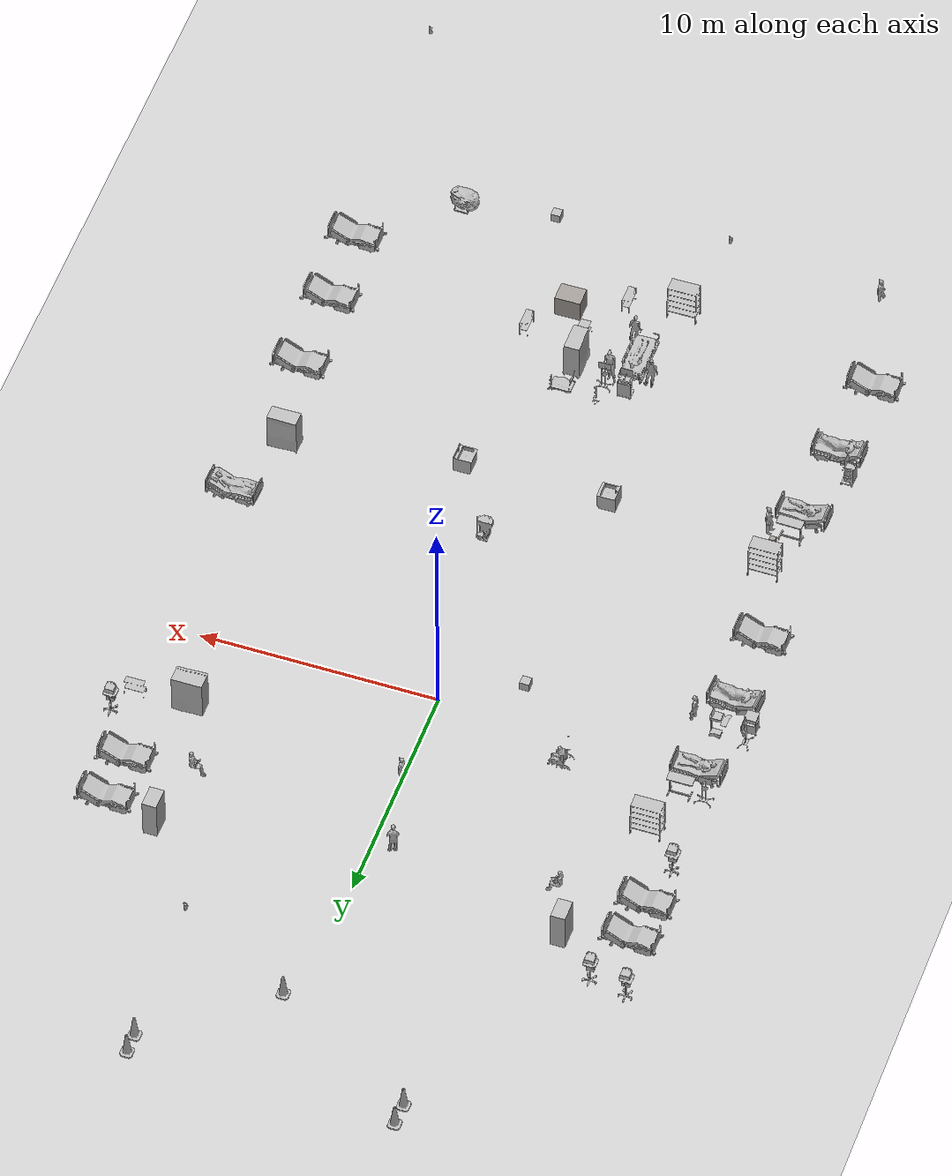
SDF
<sdf version="1.6">
 <world name="world">
  <gravity>0 0 -9.8</gravity>
  <physics default="0" name="default_physics" type="ode">
   <max_step_size>0.001</max_step_size>
   <real_time_factor>1</real_time_factor>
   <real_time_update_rate>1000</real_time_update_rate>
  </physics>
  <scene><ambient>0.6 0.6 0.6 1</ambient><background>0.4 0.4 0.4 1</background><shadows>false</shadows></scene>
  <include><uri>model://sun</uri></include>
  <include><uri>model://ground_plane</uri><pose>0 0 -0.1 0 -0 0</pose></include>
  <model name="CGMClassic_1">
   <include>
    <uri>model://CGMClassic</uri>
    <static>true</static>
    <pose>11.1777 -18.4129 0 0 0 -3.13719</pose>
   </include>
  </model>
  <model name="CGMClassic_2">
   <include>
    <uri>model://CGMClassic</uri>
    <static>true</static>
    <pose>11.1179 -14.6493 0 0 0 -3.13599</pose>
   </include>
  </model>
  <model name="Scrubs_1">
   <include><uri>model://Scrubs</uri><static>true</static><pose>-9.61916 -12.5112 0 0 0 -3.12353</pose></include>
  </model>
  <model name="cardboard_box_1">
   <pose>-3.10778 -1.65417 0.149501 0 -1e-06 0</pose>
   <scale>1 1 1</scale>
   <link name="link">
    <pose>-3.10778 -1.65417 0.149501 0 -1e-06 0</pose>
    <velocity>0 0 0 0 -0 0</velocity>
    <acceleration>-0 -0 -0 0 -0 0</acceleration>
    <wrench>-0 -0 -0 0 -0 0</wrench>
   </link>
  </model>
  <model name="Scrubs_2_box">
   <pose>0.054597 4.05849 0 0 -0 3.12413</pose>
   <link name="Scrubs_2_link">
    <collision name="collision"><geometry><box><size>0.3 0.3 1.0</size></box></geometry></collision>
    <visual name="visual">
     <pose>0 0 -0.5 0 0 0</pose>
     <geometry><mesh><uri>model://Scrubs/meshes/scrubs.obj</uri></mesh></geometry>
    </visual>
   </link>
   <plugin name="model_move" filename="libmodel_move.so">
    <goals>
     <pose>-2.0      2.0 0 0 0 0</pose>
     <pose>0.054597 4.05849 0 0 -0 3.12413</pose>
     <pose>2.0      2.0 0 0 0 0</pose>
     <pose>0.054597 4.05849 0 0 -0 3.12413</pose>
    </goals>
   </plugin>
  </model>
  <model name="PatientWheelChair_1_box">
   <pose>-5.46091 1.23577 0 0 0 0</pose>
   <link name="PatientWheelChair_1_link">
    <collision name="collision"><geometry><box><size>0.4 0.4 1.0</size></box></geometry></collision>
    <visual name="visual">
     <pose>0 0 -0.5 0 0 0</pose>
     <geometry><mesh><uri>model://PatientWheelChair/meshes/PatientWheelChair.obj</uri></mesh></geometry>
    </visual>
   </link>
   <plugin name="model_move" filename="libmodel_move.so">
    <goals>
     <pose>-5.46091 -9.5 0 0 0 0</pose>
     <pose>3.43310 -9.5 0 0 0 0</pose>
     <pose>-5.46091 -9.5 0 0 0 0</pose>
     <pose>-5.46091 1.23577 0 0 0 0</pose>
    </goals>
   </plugin>
  </model>
  <model name="Scrubs_3_box">
   <pose>-10.0 -26.0 0 0 0 3.14</pose>
   <link name="Scrubs_3_link">
    <collision name="collision"><geometry><box><size>0.3 0.3 1.0</size></box></geometry></collision>
    <visual name="visual">
     <pose>0 0 -0.5 0 0 0</pose>
     <geometry><mesh><uri>model://Scrubs/meshes/scrubs.obj</uri></mesh></geometry>
    </visual>
   </link>
   <plugin name="model_move" filename="libmodel_move.so">
    <goals>
     <pose>-7.5 -25 0 0 -0 0</pose>
     <pose>-5 -25 0 0 -0 0</pose>
     <pose>-5 -34 0 0 -0 0</pose>
     <pose>-7.5 -34 0 0 -0 0</pose>
     <pose>-7.5 -25 0 0 -0 0</pose>
     <pose>-10.0 -26.0 0 0 0 3.14</pose>
    </goals>
   </plugin>
  </model>
  <model name="SurgicalTrolley_1">
   <include>
    <uri>model://SurgicalTrolley</uri>
    <static>true</static>
    <pose>11.4301 3.56328 0 0 -0 0</pose>
   </include>
  </model>
  <model name="CGMClassic_3">
   <include>
    <uri>model://CGMClassic</uri>
    <static>true</static>
    <pose>-11.2304 -21.1134 0 0 0 -3.11834</pose>
   </include>
  </model>
  <model name="FemaleVisitorSit_1">
   <pose>-7.61435 7.50057 0 0 -0 1.60052</pose>
   <link name="FemaleVisitorSit::body">
    <visual name="visual">
     <geometry><mesh><uri>model://FemaleVisitorSit/meshes/FemaleVisitorSit.obj</uri></mesh></geometry>
    </visual>
    <collision name="collision">
     <geometry><mesh><uri>model://FemaleVisitorSit/meshes/FemaleVisitorSit_Col.obj</uri></mesh></geometry>
    </collision>
   </link>
   <plugin name="teleport_model_plugin" filename="libteleport_model.so">
    <teleport_interval>30.0</teleport_interval>
    <goals><pose>-7.61435 8.55057 0 0 -0 1.60052</pose><pose>-7.61435 7.50057 0 0 -0 1.60052</pose></goals>
   </plugin>
  </model>
  <model name="MopCart3_1">
   <include>
    <uri>model://MopCart3</uri>
    <static>true</static>
    <pose>1.07736 -8.59036 -6.7e-05 0 1e-06 0</pose>
   </include>
  </model>
  <model name="ElderLadyPatient_1">
   <include>
    <uri>model://ElderLadyPatient</uri>
    <static>true</static>
    <pose>-10.9972 0.231354 0.001654 0 -0 0</pose>
   </include>
  </model>
  <model name="ElderLadyPatient_2">
   <include>
    <uri>model://ElderLadyPatient</uri>
    <static>true</static>
    <pose>-10.8133 -13.5925 0.001657 0 -2e-06 -0.025052</pose>
   </include>
  </model>
  <model name="CGMClassic_4">
   <include>
    <uri>model://CGMClassic</uri>
    <static>true</static>
    <pose>-11.0878 -7.00992 0 0 -0 3.1351</pose>
   </include>
  </model>
  <model name="InstrumentCart1_1">
   <include>
    <uri>model://InstrumentCart1</uri>
    <static>true</static>
    <pose>-11.8071 -16.1825 0 0 -0 1.56702</pose>
   </include>
  </model>
  <model name="ElderMalePatient_1">
   <include>
    <uri>model://ElderMalePatient</uri>
    <static>true</static>
    <pose>-11.1165 -17.2377 0.001656 0 3e-06 0</pose>
   </include>
  </model>
  <model name="InstrumentCart2_1">
   <include>
    <uri>model://InstrumentCart2</uri>
    <static>true</static>
    <pose>-12.0906 -1.87329 0.051875 0 -0 1.57773</pose>
   </include>
  </model>
  <model name="InstrumentCart2_2">
   <include>
    <uri>model://InstrumentCart2</uri>
    <static>true</static>
    <pose>-11.5231 1.34237 0 0 -0 0</pose>
   </include>
  </model>
  <model name="CGMClassic_5">
   <include>
    <uri>model://CGMClassic</uri>
    <static>true</static>
    <pose>-11.0106 8.9505 -0.008203 -0.035019 -0.000392 3.13388</pose>
   </include>
  </model>
  <model name="CGMClassic_6">
   <include>
    <uri>model://CGMClassic</uri>
    <static>true</static>
    <pose>-11.025 7.10335 0 -0.035021 1.8e-05 -3.13762</pose>
   </include>
  </model>
  <model name="BedTable_1">
   <include>
    <uri>model://BedTable</uri>
    <static>true</static>
    <pose>-10.4759 1.39442 0.001184 0 -3e-06 0</pose>
   </include>
  </model>
  <model name="BedTable_2">
   <include>
    <uri>model://BedTable</uri>
    <static>true</static>
    <pose>-10.5874 -12.5084 0.001189 0 -0 3.11588</pose>
   </include>
  </model>
  <model name="BedsideTable_1">
   <include>
    <uri>model://BedsideTable</uri>
    <static>true</static>
    <pose>-12.1499 -2.63111 0.00018 1e-06 -0 -0.00878</pose>
   </include>
  </model>
  <model name="TrolleyBedPatient_1">
   <include>
    <uri>model://TrolleyBedPatient</uri>
    <static>true</static>
    <pose>-1.83202 -19.2612 0 0 -0 0</pose>
   </include>
  </model>
  <model name="Scrubs_4">
   <include><uri>model://Scrubs</uri><static>true</static><pose>-0.93616 -18.2252 0 0 -0 1.62572</pose></include>
  </model>
  <model name="Shower_1">
   <include><uri>model://Shower</uri><static>true</static><pose>-1.07422 -16.1332 0 0 -0 0</pose></include>
  </model>
  <model name="Shower_2">
   <include><uri>model://Shower</uri><static>true</static><pose>0.853327 -16.1492 0 0 -0 0</pose></include>
  </model>
  <model name="SurgicalTrolley_2">
   <include>
    <uri>model://SurgicalTrolley</uri>
    <static>true</static>
    <pose>-0.411421 -22.2085 0 0 0 -1.58175</pose>
   </include>
  </model>
  <model name="SurgicalTrolley_3">
   <include>
    <uri>model://SurgicalTrolley</uri>
    <static>true</static>
    <pose>3.11747 -19.6565 0 0 -0 1.57031</pose>
   </include>
  </model>
  <model name="SurgicalTrolleyMed_1">
   <include>
    <uri>model://SurgicalTrolleyMed</uri>
    <static>true</static>
    <pose>0.770804 -19.7749 0 0 0 -1.56798</pose>
   </include>
  </model>
  <model name="Scrubs_5">
   <include>
    <uri>model://Scrubs</uri>
    <static>true</static>
    <pose>-2.66657 -18.3733 0 -0.002221 -0.006608 -1.24025</pose>
   </include>
  </model>
  <model name="InstrumentCart1_2">
   <include>
    <uri>model://InstrumentCart1</uri>
    <static>true</static>
    <pose>-11.8071 -16.1825 0 0 -0 1.56702</pose>
   </include>
  </model>
  <model name="InstrumentCart2_3">
   <include>
    <uri>model://InstrumentCart2</uri>
    <static>true</static>
    <pose>-0.869537 -17.7436 0 0 0 -0.002595</pose>
   </include>
  </model>
  <model name="StorageRackCovered_1">
   <include>
    <uri>model://StorageRackCovered</uri>
    <static>true</static>
    <pose>0.546476 -18.3985 -0 0 -0 1.56584</pose>
   </include>
  </model>
  <model name="StorageRack_2">
   <include>
    <uri>model://StorageRack</uri>
    <static>true</static>
    <pose>-2.69866 -22.4178 -8e-06 0 4e-06 0</pose>
   </include>
  </model>
  <model name="KitchenSink_1">
   <include>
    <uri>model://KitchenSink</uri>
    <static>true</static>
    <pose>3.06236 -11.8809 -0.001614 0 -0 3.1391</pose>
   </include>
  </model>
  <model name="KitchenSink_2">
   <include>
    <uri>model://KitchenSink</uri>
    <static>true</static>
    <pose>-3.09305 -11.8988 -0.001609 0 -0 0</pose>
   </include>
  </model>
  <model name="CGMClassic_7">
   <include>
    <uri>model://CGMClassic</uri>
    <static>true</static>
    <pose>10.6166 9.06291 -0.008203 -0.03501 0.000885 -3.11285</pose>
   </include>
  </model>
  <model name="CGMClassic_8">
   <include>
    <uri>model://CGMClassic</uri>
    <static>true</static>
    <pose>10.6006 6.90956 -0.008203 -0.035003 0.001133 -3.10576</pose>
   </include>
  </model>
  <model name="ParkingTrolleyMin_1">
   <include>
    <uri>model://ParkingTrolleyMin</uri>
    <static>true</static>
    <pose>0.715846 -17.1496 -0.000121 -1e-06 -0 0</pose>
   </include>
  </model>
  <model name="MaleVisitorOnPhone_1_box">
   <pose>-0.760316 7.58474 0 0 0 -1.14974</pose>
   <link name="MaleVisitorOnPhone_1_link">
    <collision name="collision"><geometry><box><size>0.5 0.5 1.0</size></box></geometry></collision>
    <visual name="visual">
     <pose>0 0 -0.5 0 0 0</pose>
     <geometry><mesh><uri>model://MaleVisitorOnPhone/meshes/MaleVisitorStatic.obj</uri></mesh></geometry>
    </visual>
   </link>
   <plugin name="model_move" filename="libmodel_move.so">
    <goals><pose>-4.00000  7.58474 0 0 0 -1.14974</pose><pose>-0.760316 7.58474 0 0 0 -1.14974</pose></goals>
   </plugin>
  </model>
  <model name="Scrubs_6">
   <include><uri>model://Scrubs</uri><static>true</static><pose>-1.29468 -20.4093 0 0 0 -1.51066</pose></include>
  </model>
  <model name="MalePatientBed_1">
   <include>
    <uri>model://MalePatientBed</uri>
    <static>true</static>
    <pose>11.3771 -7.38891 0.001658 -1e-06 1e-06 3.11598</pose>
   </include>
  </model>
  <model name="CGMClassic_9">
   <include>
    <uri>model://CGMClassic</uri>
    <static>true</static>
    <pose>11.3613 -21.8867 0 0 0 -3.12292</pose>
   </include>
  </model>
  <model name="StorageRackCoverOpen_1">
   <include>
    <uri>model://StorageRackCoverOpen</uri>
    <static>true</static>
    <pose>9.15016 3.44263 -9e-06 1e-06 2e-06 0</pose>
   </include>
  </model>
  <model name="StorageRack_3">
   <include><uri>model://StorageRack</uri><static>true</static><pose>-10.1178 -10.4694 -0 0 -0 0</pose></include>
  </model>
  <model name="StorageRack_4">
   <include>
    <uri>model://StorageRack</uri>
    <static>true</static>
    <pose>-9.91557 3.5644 -9e-06 1e-06 1e-06 -0.000273</pose>
   </include>
  </model>
  <model name="StorageRackCovered_2">
   <include>
    <uri>model://StorageRackCovered</uri>
    <static>true</static>
    <pose>10.294 -10.577 -7e-06 3e-06 -0 3.13389</pose>
   </include>
  </model>
  <model name="FemaleVisitorSit_2">
   <include>
    <uri>model://FemaleVisitorSit</uri>
    <static>true</static>
    <pose>7.85005 6.59766 0 0 0 -1.5621</pose>
   </include>
  </model>
  <model name="InstrumentCart1_3">
   <include>
    <uri>model://InstrumentCart1</uri>
    <static>true</static>
    <pose>-1.83539 -17.5879 0 0 -0 0</pose>
   </include>
  </model>
  <model name="ParkingTrolleyMax_1">
   <include>
    <uri>model://ParkingTrolleyMax</uri>
    <static>true</static>
    <pose>7.71054 -25.1326 -0.000121 1e-06 -0 -1.59536</pose>
   </include>
  </model>
  <model name="ElderMalePatient_2">
   <include>
    <uri>model://ElderMalePatient</uri>
    <static>true</static>
    <pose>-11.2471 -3.5813 0.001656 0 -0 -0.054192</pose>
   </include>
  </model>
  <model name="XRayMachine_1">
   <include><uri>model://XRayMachine</uri><static>true</static><pose>1.79424 -21.3329 0 0 -0 0</pose></include>
  </model>
  <model name="BloodPressureMonitor_1">
   <include>
    <uri>model://BloodPressureMonitor</uri>
    <static>true</static>
    <pose>-9.96258 -11.9361 0 0 -0 0</pose>
   </include>
  </model>
  <model name="BMWCart_1">
   <include><uri>model://BMWCart</uri><static>true</static><pose>-10.931 -1.9483 0 0 -0 0</pose></include>
  </model>
  <model name="Scrubs_7_box">
   <pose>-9.75875 -2.67552 0 0 -0 0</pose>
   <link name="Scrubs_7_link">
    <collision name="collision"><geometry><box><size>0.5 0.5 1.0</size></box></geometry></collision>
    <visual name="visual">
     <pose>0 0 -0.5 0 0 0</pose>
     <geometry><mesh><uri>model://Scrubs/meshes/scrubs.obj</uri></mesh></geometry>
    </visual>
   </link>
   <plugin name="model_move" filename="libmodel_move.so">
    <goals>
     <pose>-7.05875 -2.67552 0 0 -0 0</pose>
     <pose>-7.05875 -7.67552 0 0 -0 0</pose>
     <pose>-7.05875 -2.67552 0 0 -0 0</pose>
     <pose>-9.75875 -2.67552 0 0 -0 0</pose>
    </goals>
   </plugin>
  </model>
  <model name="BPCart_1">
   <include>
    <uri>model://BPCart</uri>
    <static>true</static>
    <pose>-10.1788 11.173 0.003446 1e-06 -0 0.003096</pose>
   </include>
  </model>
  <model name="BPCart_2">
   <include><uri>model://BPCart</uri><static>true</static><pose>12.0072 4.64765 0 0 -0 0</pose></include>
  </model>
  <model name="BPCart_3">
   <include><uri>model://BPCart</uri><static>true</static><pose>-11.7236 11.4294 0 0 -0 0</pose></include>
  </model>
  <model name="BPCart_4">
   <include>
    <uri>model://BPCart</uri>
    <static>true</static>
    <pose>-11.4703 5.05999 0.003446 1e-06 -0 0.003096</pose>
   </include>
  </model>
  <model name="VendingMachine_1">
   <include>
    <uri>model://VendingMachine</uri>
    <static>true</static>
    <pose>-8.45694 9.63064 0 0 -0 0</pose>
   </include>
  </model>
  <model name="VendingMachine_2">
   <include>
    <uri>model://VendingMachine</uri>
    <static>true</static>
    <pose>8.35378 9.64852 -3e-06 -6e-06 0 0</pose>
   </include>
  </model>
  <model name="cardboard_box">
   <pose>-3.07797 -1.68409 0.148999 0 -0 0</pose>
   <scale>1 1 1</scale>
   <link name="cardboard_box::link">
    <collision name="collision">
     <geometry><mesh><uri>model://cardboard_box/meshes/cardboard_box.dae</uri></mesh></geometry>
    </collision>
    <visual name="visual">
     <geometry><mesh><uri>model://cardboard_box/meshes/cardboard_box.dae</uri></mesh></geometry>
    </visual>
   </link>
   <plugin name="teleport_model_plugin" filename="libteleport_model.so">
    <teleport_interval>45.0</teleport_interval>
    <goals><pose>-1.10797 -1.68409 0.148999 0 -0 0</pose><pose>-3.07797 -1.68409 0.148999 0 -0 0</pose></goals>
   </plugin>
  </model>
  <model name="cardboard_box_2">
   <pose>3.86797 -25.63 0.149501 0 -0 0</pose>
   <scale>1 1 1</scale>
   <link name="link">
    <collision name="collision">
     <geometry><mesh><uri>model://cardboard_box/meshes/cardboard_box.dae</uri></mesh></geometry>
    </collision>
    <visual name="visual">
     <geometry><mesh><uri>model://cardboard_box/meshes/cardboard_box.dae</uri></mesh></geometry>
    </visual>
   </link>
   <plugin name="teleport_model_plugin" filename="libteleport_model.so">
    <teleport_interval>50.0</teleport_interval>
    <goals><pose>1.86797 -25.63 0.149501 0 -0 0</pose><pose>3.86797 -25.63 0.149501 0 -0 0</pose></goals>
   </plugin>
  </model>
  <model name="Fire Extinguisher_0">
   <link name="link">
    <collision name="collision">
     <geometry><mesh><uri>model://fire_extinguisher/meshes/extinguisher.dae</uri></mesh></geometry>
    </collision>
    <visual name="visual">
     <geometry><mesh><uri>model://fire_extinguisher/meshes/extinguisher.dae</uri></mesh></geometry>
    </visual>
   </link>
   <pose>5.80011 13.09 0 0 -0 0</pose>
   <plugin name="teleport_model_plugin" filename="libteleport_model.so">
    <teleport_interval>40.0</teleport_interval>
    <goals><pose>3.61 14.7934 0 0 -0 0</pose><pose>5.80011 13.09 0 0 -0 0</pose></goals>
   </plugin>
  </model>
  <model name="Fire Extinguisher_1">
   <link name="link">
    <collision name="collision">
     <geometry><mesh><uri>model://fire_extinguisher/meshes/extinguisher.dae</uri></mesh></geometry>
    </collision>
    <visual name="visual">
     <geometry><mesh><uri>model://fire_extinguisher/meshes/extinguisher.dae</uri></mesh></geometry>
    </visual>
   </link>
   <pose>12.33 -33.88 0.0 0 -0 0</pose>
   <plugin name="teleport_model_plugin" filename="libteleport_model.so">
    <teleport_interval>30.0</teleport_interval>
    <goals><pose>9.95 -32.19 0 0 -0 0</pose><pose>12.33 -33.88 0.0 0 -0 0</pose></goals>
   </plugin>
  </model>
  <model name="Fire Extinguisher_2">
   <link name="link">
    <collision name="collision">
     <geometry><mesh><uri>model://fire_extinguisher/meshes/extinguisher.dae</uri></mesh></geometry>
    </collision>
    <visual name="visual">
     <geometry><mesh><uri>model://fire_extinguisher/meshes/extinguisher.dae</uri></mesh></geometry>
    </visual>
   </link>
   <pose>-3.21 -26.82 0.0 0 -0 0</pose>
   <plugin name="teleport_model_plugin" filename="libteleport_model.so">
    <teleport_interval>35.0</teleport_interval>
    <goals><pose>-1.58 -26.21 0 0 -0 0</pose><pose>-3.21 -26.82 0.0 0 -0 0</pose></goals>
   </plugin>
  </model>
  <model name="Construction Cone">
   <link name="link">
    <collision name="collision">
     <geometry>
      <mesh><scale>10 10 10</scale><uri>model://construction_cone/meshes/construction_cone.dae</uri></mesh>
     </geometry>
    </collision>
    <visual name="visual">
     <geometry>
      <mesh><scale>10 10 10</scale><uri>model://construction_cone/meshes/construction_cone.dae</uri></mesh>
     </geometry>
    </visual>
    <inertial>
     <inertia><ixx>1</ixx><ixy>0</ixy><ixz>0</ixz><iyy>1</iyy><iyz>0</iyz><izz>1</izz></inertia>
     <mass>1</mass>
    </inertial>
   </link>
   <pose>-5.41601 19.2994 0 0 -0 0</pose>
  </model>
  <model name="Construction Cone_0">
   <link name="link">
    <collision name="collision">
     <geometry>
      <mesh><scale>10 10 10</scale><uri>model://construction_cone/meshes/construction_cone.dae</uri></mesh>
     </geometry>
    </collision>
    <visual name="visual">
     <geometry>
      <mesh><scale>10 10 10</scale><uri>model://construction_cone/meshes/construction_cone.dae</uri></mesh>
     </geometry>
    </visual>
    <inertial>
     <inertia><ixx>1</ixx><ixy>0</ixy><ixz>0</ixz><iyy>1</iyy><iyz>0</iyz><izz>1</izz></inertia>
     <mass>1</mass>
    </inertial>
   </link>
   <pose>-5.39163 20.2409 0 0 -0 0</pose>
  </model>
  <model name="Construction Cone_1">
   <link name="link">
    <collision name="collision">
     <geometry>
      <mesh><scale>10 10 10</scale><uri>model://construction_cone/meshes/construction_cone.dae</uri></mesh>
     </geometry>
    </collision>
    <visual name="visual">
     <geometry>
      <mesh><scale>10 10 10</scale><uri>model://construction_cone/meshes/construction_cone.dae</uri></mesh>
     </geometry>
    </visual>
    <inertial>
     <inertia><ixx>1</ixx><ixy>0</ixy><ixz>0</ixz><iyy>1</iyy><iyz>0</iyz><izz>1</izz></inertia>
     <mass>1</mass>
    </inertial>
   </link>
   <pose>5.45197 20.3753 0 0 -0 0</pose>
  </model>
  <model name="Construction Cone_2">
   <link name="link">
    <collision name="collision">
     <geometry>
      <mesh><scale>10 10 10</scale><uri>model://construction_cone/meshes/construction_cone.dae</uri></mesh>
     </geometry>
    </collision>
    <visual name="visual">
     <geometry>
      <mesh><scale>10 10 10</scale><uri>model://construction_cone/meshes/construction_cone.dae</uri></mesh>
     </geometry>
    </visual>
    <inertial>
     <inertia><ixx>1</ixx><ixy>0</ixy><ixz>0</ixz><iyy>1</iyy><iyz>0</iyz><izz>1</izz></inertia>
     <mass>1</mass>
    </inertial>
   </link>
   <pose>5.46674 19.5149 0 0 -0 0</pose>
  </model>
  <model name="Construction Cone_3">
   <link name="link">
    <collision name="collision">
     <geometry>
      <mesh><scale>10 10 10</scale><uri>model://construction_cone/meshes/construction_cone.dae</uri></mesh>
     </geometry>
    </collision>
    <visual name="visual">
     <geometry>
      <mesh><scale>10 10 10</scale><uri>model://construction_cone/meshes/construction_cone.dae</uri></mesh>
     </geometry>
    </visual>
    <inertial>
     <inertia><ixx>1</ixx><ixy>0</ixy><ixz>0</ixz><iyy>1</iyy><iyz>0</iyz><izz>1</izz></inertia>
     <mass>1</mass>
    </inertial>
   </link>
   <pose>0.759627 15.7634 0 0 -0 0</pose>
   <plugin name="teleport_model_plugin" filename="libteleport_model.so">
    <teleport_interval>100.0</teleport_interval>
    <goals>
     <pose>-1.95 14.4634 0 0 -0 0</pose>
     <pose>4.0 14.0634 0 0 -0 0</pose>
     <pose>0.759627 15.7634 0 0 -0 0</pose>
    </goals>
   </plugin>
  </model>
 </world>
</sdf>

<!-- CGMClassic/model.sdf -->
<sdf version="1.6">
  <model name="CGMClassic">
   <static>true</static>
    <link name="body">
      <pose>0 0 0 0 0 0</pose>

      <visual name="visual">
        <geometry>
          <mesh>
            <uri>model://CGMClassic/meshes/CGMClassic.obj</uri>
            <scale>0.01 0.01 0.01</scale>
          </mesh>
        </geometry>
      </visual>

      <collision name="collision">
        <geometry>
          <mesh>
            <uri>model://CGMClassic/meshes/CGMClassic.obj</uri>
            <scale>0.01 0.01 0.01</scale>
          </mesh>
        </geometry>
      </collision>

    </link>
  </model>
</sdf>

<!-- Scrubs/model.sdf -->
<sdf version="1.6">
  <model name='Scrubs'>
   <static>true</static>
    <link name="body">
      <pose>0 0 0 0 0 0</pose>

      <visual name="visual">
        <geometry>
          <mesh>
            <uri>model://Scrubs/meshes/scrubs.obj</uri>
          </mesh>
        </geometry>
      </visual>

      <collision name="collision">
        <geometry>
          <mesh>
            <uri>model://Scrubs/meshes/Scrubs_Col.obj</uri>
          </mesh>
        </geometry>
      </collision>

    </link>
  </model>
</sdf>

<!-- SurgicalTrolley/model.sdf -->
<sdf version="1.6">
  <model name='SurgicalTrolley'>
   <static>true</static>
    <link name="body">
      <pose>0 0 0 0 0 0</pose>

      <visual name="visual">
        <geometry>
          <mesh>
            <uri>model://SurgicalTrolley/meshes/trolley.obj</uri>
          </mesh>
        </geometry>
      </visual>

      <collision name="collision">
        <geometry>
          <mesh>
            <uri>model://SurgicalTrolley/meshes/trolley.obj</uri>
          </mesh>
        </geometry>
      </collision>

    </link>
  </model>
</sdf>

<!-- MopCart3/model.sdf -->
<sdf version="1.5">
  <model name="MopCart3">
    <link name="link">
      <pose>0 0 0 0 0 0</pose>

        <visual name="visual">
          <geometry>
            <mesh><uri>model://MopCart3/meshes/MopCart3.obj</uri></mesh>
          </geometry>
        </visual>

        <collision name="collision">
          <geometry>
            <mesh><uri>model://MopCart3/meshes/MopCart3.obj</uri></mesh>
          </geometry>
        </collision>

    </link>
  </model>
</sdf>

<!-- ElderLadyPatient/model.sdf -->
<sdf version="1.6">
  <model name='ElderLadyPatient'>
    <link name="body">
      <pose>0 0 0 0 0 0</pose>

      <visual name="visual">
        <geometry>
          <mesh>
            <uri>model://ElderLadyPatient/meshes/ElderFemale.obj</uri>
          </mesh>
        </geometry>
      </visual>

      <collision name="collision">
        <geometry>
          <mesh>
            <uri>model://ElderLadyPatient/meshes/ElderFemale.obj</uri>
          </mesh>
        </geometry>
      </collision>

    </link>
  </model>
</sdf>

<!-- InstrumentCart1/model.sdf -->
<sdf version="1.6">
  <model name="InstrumentCart1">
   <static>true</static>
    <link name="body">
      <pose>0 0 0 0 0 0</pose>

      <visual name="visual">
        <geometry>
          <mesh>
            <uri>model://InstrumentCart1/meshes/InstrumentCart1.obj</uri>
          </mesh>
        </geometry>
      </visual>

      <collision name="collision">
        <geometry>
          <mesh>
            <uri>model://InstrumentCart1/meshes/InstrumentCart1.obj</uri>
          </mesh>
        </geometry>
      </collision>

    </link>
  </model>
</sdf>

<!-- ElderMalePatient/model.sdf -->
<sdf version="1.5">
  <model name="ElderMalePatient">
    <link name="link">
      <pose>0 0 0 0 0 0</pose>

        <visual name="visual">
          <geometry>
            <mesh><uri>model://ElderMalePatient/meshes/ElderMalePatient.obj</uri></mesh>
          </geometry>
        </visual>

        <collision name="collision">
          <geometry>
            <mesh><uri>model://ElderMalePatient/meshes/ElderMalePatient.obj</uri></mesh>
          </geometry>
        </collision>

    </link>
  </model>
</sdf>

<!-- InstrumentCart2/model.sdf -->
<sdf version="1.6">
  <model name="InstrumentCart2">
   <static>true</static>
    <link name="body">
      <pose>0 0 0 0 0 0</pose>

      <visual name="visual">
        <geometry>
          <mesh>
            <uri>model://InstrumentCart2/meshes/InstrumentCart2.obj</uri>
          </mesh>
        </geometry>
      </visual>

      <collision name="collision">
        <geometry>
          <mesh>
            <uri>model://InstrumentCart2/meshes/InstrumentCart2.obj</uri>
          </mesh>
        </geometry>
      </collision>

    </link>
  </model>
</sdf>

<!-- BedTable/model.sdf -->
<sdf version="1.6">
  <model name='BedTable'>
    <link name="body">
      <pose>0 0 0 0 0 0</pose>

      <visual name="visual">
        <geometry>
          <mesh>
            <uri>model://BedTable/meshes/BedTable.obj</uri>
          </mesh>
        </geometry>
      </visual>

      <collision name="collision">
        <geometry>
          <mesh>
            <uri>model://BedTable/meshes/BedTable_Col.obj</uri>
          </mesh>
        </geometry>
      </collision>

    </link>
  </model>
</sdf>

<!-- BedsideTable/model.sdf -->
<sdf version="1.6">
  <model name='BedsideTable'>
    <link name="body">
      <pose>0 0 0 0 0 -1.5708</pose>

      <visual name="visual">
        <geometry>
          <mesh>
            <uri>model://BedsideTable/meshes/BedsideTable.obj</uri>
          </mesh>
        </geometry>
      </visual>

      <collision name="collision">
        <geometry>
          <mesh>
            <uri>model://BedsideTable/meshes/BedsideTable_Col.obj</uri>
          </mesh>
        </geometry>
      </collision>

    </link>
  </model>
</sdf>

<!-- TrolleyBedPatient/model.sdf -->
<sdf version="1.6">
  <model name="TrolleyBedPatient">
   <static>true</static>
    <link name="body">
      <pose>0 0 0 0 0 0</pose>

      <visual name="visual">
        <geometry>
          <mesh>
            <uri>model://TrolleyBedPatient/meshes/TrolleyBedPatient.obj</uri>
          </mesh>
        </geometry>
      </visual>

      <collision name="collision">
        <geometry>
          <mesh>
            <uri>model://TrolleyBedPatient/meshes/TrolleyBedPatient.obj</uri>
          </mesh>
        </geometry>
      </collision>

    </link>
  </model>
</sdf>

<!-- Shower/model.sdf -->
<sdf version="1.6">
  <model name='Shower'>
<static>true</static>
    <link name="body">
      <pose>0 0 0 0 0 0</pose>

      <visual name="visual">
        <geometry>
          <mesh>
            <uri>model://Shower/meshes/Shower.obj</uri>
            <scale>1 1 1</scale>
          </mesh>
        </geometry>
      </visual>

      <collision name="collision">
        <geometry>
          <mesh>
            <uri>model://Shower/meshes/Shower.obj</uri>
            <scale>1 1 1</scale>
          </mesh>
        </geometry>
      </collision>

    </link>
  </model>
</sdf>

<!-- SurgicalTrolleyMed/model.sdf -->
<sdf version="1.6">
  <model name="SurgicalTrolleyMed">
   <static>true</static>
    <link name="body">
      <pose>0 0 0 0 0 0</pose>

      <visual name="visual">
        <geometry>
          <mesh>
            <uri>model://SurgicalTrolleyMed/meshes/SurgicalTrolleyMed.obj</uri>
          </mesh>
        </geometry>
      </visual>

      <collision name="collision">
        <geometry>
          <mesh>
            <uri>model://SurgicalTrolleyMed/meshes/SurgicalTrolleyMed_Col.obj</uri>
          </mesh>
        </geometry>
      </collision>

    </link>
  </model>
</sdf>

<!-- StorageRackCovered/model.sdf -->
<sdf version="1.5">
  <model name="StorageRackCovered">
    <link name="link">
      <pose>0 0 0 0 0 0</pose>

        <visual name="visual">
          <geometry>
            <mesh><uri>model://StorageRackCovered/meshes/StorageRackCovered.obj</uri></mesh>
          </geometry>
        </visual>

        <collision name="collision">
          <geometry>
            <mesh><uri>model://StorageRackCovered/meshes/StorageRackCovered.obj</uri></mesh>
          </geometry>
        </collision>

    </link>
  </model>
</sdf>

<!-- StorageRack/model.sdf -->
<sdf version="1.5">
  <model name="StorageRack">
    <link name="link">
      <pose>0 0 0 0 0 0</pose>

        <visual name="visual">
          <geometry>
            <mesh><uri>model://StorageRack/meshes/StorageRack.obj</uri></mesh>
          </geometry>
        </visual>

        <collision name="collision">
          <geometry>
            <mesh><uri>model://StorageRack/meshes/StorageRack.obj</uri></mesh>
          </geometry>
        </collision>

    </link>
  </model>
</sdf>

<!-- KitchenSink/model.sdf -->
<sdf version="1.5">
  <model name="KitchenSink">
    <link name="link">
      <pose>0 0 0 0 0 0</pose>

        <visual name="visual">
          <geometry>
            <mesh><uri>model://KitchenSink/meshes/kitchenSink.obj</uri></mesh>
          </geometry>
        </visual>

        <collision name="collision">
          <geometry>
            <mesh><uri>model://KitchenSink/meshes/kitchenSink.obj</uri></mesh>
          </geometry>
        </collision>

    </link>
  </model>
</sdf>

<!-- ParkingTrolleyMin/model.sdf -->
<sdf version="1.6">
  <model name='ParkingTrolleyMin'>
    <link name="body">
      <pose>0 0 0 0 0 0</pose>

        <visual name="visual">
          <pose>0 0 0 0 0 0</pose>
          <geometry>
            <mesh><uri>model://ParkingTrolleyMin/meshes/trolleymin.obj</uri></mesh>
          </geometry>
        </visual>

        <collision name="collision">
          <pose>0 0 0 0 0 0</pose>
          <geometry>
            <mesh><uri>model://ParkingTrolleyMin/meshes/trolleymin.obj</uri></mesh>
          </geometry>
        </collision>

    </link>
  </model>
</sdf>

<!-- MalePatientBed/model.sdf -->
<sdf version="1.5">
  <model name="MalePatientBed">
    <link name="link">
      <pose>0 0 0 0 0 0</pose>

        <visual name="visual">
          <geometry>
            <mesh><uri>model://MalePatientBed/meshes/MalePatientBed.obj</uri></mesh>
          </geometry>
        </visual>

        <collision name="collision">
          <geometry>
            <mesh><uri>model://MalePatientBed/meshes/MalePatientBed.obj</uri></mesh>
          </geometry>
        </collision>

    </link>
  </model>
</sdf>

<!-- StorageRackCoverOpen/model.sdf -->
<sdf version="1.5">
  <model name="StorageRackCoverOpen">
    <link name="link">
      <pose>0 0 0 0 0 0</pose>

        <visual name="visual">
          <geometry>
            <mesh><uri>model://StorageRackCoverOpen/meshes/StorageRackCoverOpen.obj</uri></mesh>
          </geometry>
        </visual>

        <collision name="collision">
          <geometry>
            <mesh><uri>model://StorageRackCoverOpen/meshes/StorageRackCoverOpen.obj</uri></mesh>
          </geometry>
        </collision>

    </link>
  </model>
</sdf>

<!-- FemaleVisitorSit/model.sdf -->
<sdf version="1.6">
  <model name="FemaleVisitorSit">
   <static>true</static>
    <link name="body">
      <pose>0 0 0 0 0 0</pose>

      <visual name="visual">
        <geometry>
          <mesh>
            <uri>model://FemaleVisitorSit/meshes/FemaleVisitorSit.obj</uri>
          </mesh>
        </geometry>
      </visual>

      <collision name="collision">
        <geometry>
          <mesh>
            <uri>model://FemaleVisitorSit/meshes/FemaleVisitorSit_Col.obj</uri>
          </mesh>
        </geometry>
      </collision>

    </link>
  </model>
</sdf>

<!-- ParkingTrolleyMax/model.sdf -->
<sdf version="1.6">
  <model name='ParkingTrolleyMax'>
    <link name="body">
      <pose>0 0 0 0 0 0</pose>

        <visual name="visual">
          <pose>0 0 0 0 0 0</pose>
          <geometry>
            <mesh><uri>model://ParkingTrolleyMax/meshes/ParkingTrolleyMax.obj</uri></mesh>
          </geometry>
        </visual>

        <collision name="collision">
          <pose>0 0 0 0 0 0</pose>
          <geometry>
            <mesh><uri>model://ParkingTrolleyMax/meshes/ParkingTrolleyMax.obj</uri></mesh>
          </geometry>
        </collision>

    </link>
  </model>
</sdf>

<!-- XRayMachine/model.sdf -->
<sdf version="1.6">
  <model name="XRayMachine">
    <static>true</static>
    <link name="link">
      <collision name="col">
        <geometry>
          <box>
            <size>1.1 0.85 1.65</size>
          </box>
        </geometry>
      </collision>
      <visual name="vis">
        <geometry>
          <box>
            <size>1.1 0.85 1.65</size>
          </box>
        </geometry>
        <material>
          <ambient>0.62 0.6 0.58 1</ambient>
          <diffuse>0.62 0.6 0.58 1</diffuse>
        </material>
      </visual>
    </link>
  </model>
</sdf>

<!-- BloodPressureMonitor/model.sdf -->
<sdf version="1.6">
  <model name="BloodPressureMonitor">
    <static>true</static>
    <link name="link">
      <collision name="col">
        <geometry>
          <box>
            <size>0.25 0.22 0.95</size>
          </box>
        </geometry>
      </collision>
      <visual name="vis">
        <geometry>
          <box>
            <size>0.25 0.22 0.95</size>
          </box>
        </geometry>
        <material>
          <ambient>0.62 0.6 0.58 1</ambient>
          <diffuse>0.62 0.6 0.58 1</diffuse>
        </material>
      </visual>
    </link>
  </model>
</sdf>

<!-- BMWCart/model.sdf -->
<sdf version="1.6">
  <model name='BMWCart'>
    <link name="body">
      <pose>0 0 0 0 0 0</pose>

      <visual name="visual">
        <geometry>
          <mesh>
            <uri>model://BMWCart/meshes/Cart_BMW.obj</uri>
          </mesh>
        </geometry>
      </visual>

      <collision name="collision">
        <geometry>
          <mesh>
            <uri>model://BMWCart/meshes/Cart_BMW_Col.obj</uri>
          </mesh>
        </geometry>
      </collision>

    </link>
  </model>
</sdf>

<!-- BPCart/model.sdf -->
<sdf version="1.6">
  <model name='BPCart'>
    <link name="body">
      <pose>0 0 0 0 0 0</pose>

      <visual name="visual">
        <geometry>
          <mesh>
            <uri>model://BPCart/meshes/Cart_BP.obj</uri>
          </mesh>
        </geometry>
      </visual>

      <collision name="collision">
        <geometry>
          <mesh>
            <uri>model://BPCart/meshes/Cart_BP_Col.obj</uri>
          </mesh>
        </geometry>
      </collision>

    </link>
  </model>
</sdf>

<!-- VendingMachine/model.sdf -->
<sdf version="1.6">
  <model name='VendingMachine'>
    <link name="body">
      <pose>0 0 0 0 0 0</pose>

      <visual name="visual">
        <geometry>
          <mesh>
            <uri>model://VendingMachine/meshes/VendingMachine.obj</uri>
          </mesh>
        </geometry>
      </visual>

      <collision name="collision">
        <geometry>
          <mesh>
            <uri>model://VendingMachine/meshes/VendingMachine.obj</uri>
          </mesh>
        </geometry>
      </collision>

    </link>
  </model>
</sdf>
